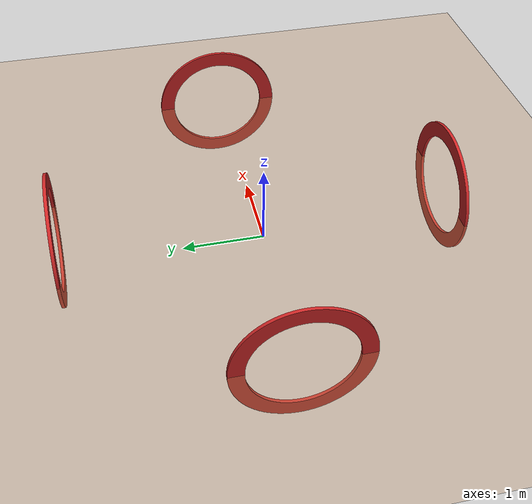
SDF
<sdf version="1.6">
 <world name="default">
  <light name="point_light" type="directional">
   <pose>0 0 15 0 -0 0</pose>
   <cast_shadows>0</cast_shadows>
   <diffuse>1 1 1 1</diffuse>
   <specular>0.1 0.1 0.1 1</specular>
   <direction>0 0 -1</direction>
  </light>
  <model name="ground_plane">
   <static>1</static>
   <link name="link">
    <collision name="collision">
     <geometry><plane><normal>0 0 1</normal><size>100 100</size></plane></geometry>
     <surface><friction><ode><mu>100</mu><mu2>50</mu2></ode></friction></surface>
    </collision>
    <visual name="visual">
     <cast_shadows>0</cast_shadows>
     <geometry><plane><normal>0 0 1</normal><size>22 22</size></plane></geometry>
     <material><script><uri>model://textures/texture.material</uri><name>Floor_Wood</name></script></material>
    </visual>
   </link>
  </model>
  <physics name="default_physics" default="0" type="ode">
   <ode>
    <solver>
     <type>quick</type>
     <iters>150</iters>
     <sor>1.3</sor>
     <use_dynamic_moi_rescaling>0</use_dynamic_moi_rescaling>
    </solver>
    <constraints>
     <cfm>1e-05</cfm>
     <erp>0.2</erp>
     <contact_max_correcting_vel>1000</contact_max_correcting_vel>
     <contact_surface_layer>0.01</contact_surface_layer>
    </constraints>
   </ode>
   <max_step_size>0.004</max_step_size>
   <real_time_factor>1000</real_time_factor>
   <real_time_update_rate>250</real_time_update_rate>
  </physics>
  <gravity>0 0 -9.8066</gravity>
  <magnetic_field>6e-06 2.3e-05 -4.2e-05</magnetic_field>
  <atmosphere type="adiabatic"/>
  <scene><ambient>0.4 0.4 0.4 1</ambient><background>0.7 0.7 0.7 1</background><shadows>1</shadows></scene>
  <spherical_coordinates>
   <surface_model>EARTH_WGS84</surface_model>
   <latitude_deg>0</latitude_deg>
   <longitude_deg>0</longitude_deg>
   <elevation>0</elevation>
   <heading_deg>0</heading_deg>
  </spherical_coordinates>
  <gravity>0 0 -9.8066</gravity>
  <magnetic_field>6e-06 2.3e-05 -4.2e-05</magnetic_field>
  <model name="circle_gate">
   <static>1</static>
   <link name="link">
    <inertial>
     <mass>10</mass>
     <inertia><ixx>10</ixx><ixy>0</ixy><ixz>0</ixz><iyy>10</iyy><iyz>0</iyz><izz>10</izz></inertia>
    </inertial>
    <collision name="collision">
     <geometry><mesh><uri>model://circle_gate/meshes/circle_gate.stl</uri></mesh></geometry>
    </collision>
    <visual name="visual">
     <geometry><mesh><uri>model://circle_gate/meshes/circle_gate.stl</uri></mesh></geometry>
     <material>
      <script><uri>file://media/materials/scripts/gazebo.material</uri><name>Gazebo/Red</name></script>
     </material>
    </visual>
   </link>
   <pose>-2 0 0 0 -0 0</pose>
  </model>
  <model name="circle_gate_0">
   <static>1</static>
   <link name="link">
    <inertial>
     <mass>10</mass>
     <inertia><ixx>10</ixx><ixy>0</ixy><ixz>0</ixz><iyy>10</iyy><iyz>0</iyz><izz>10</izz></inertia>
    </inertial>
    <collision name="collision">
     <geometry><mesh><uri>model://circle_gate/meshes/circle_gate.stl</uri></mesh></geometry>
    </collision>
    <visual name="visual">
     <geometry><mesh><uri>model://circle_gate/meshes/circle_gate.stl</uri></mesh></geometry>
     <material>
      <script><uri>file://media/materials/scripts/gazebo.material</uri><name>Gazebo/Red</name></script>
     </material>
    </visual>
   </link>
   <pose>0.5 -2.5 0 0 -0 1.57</pose>
  </model>
  <model name="circle_gate_1">
   <static>1</static>
   <link name="link">
    <inertial>
     <mass>10</mass>
     <inertia><ixx>10</ixx><ixy>0</ixy><ixz>0</ixz><iyy>10</iyy><iyz>0</iyz><izz>10</izz></inertia>
    </inertial>
    <collision name="collision">
     <geometry><mesh><uri>model://circle_gate/meshes/circle_gate.stl</uri></mesh></geometry>
    </collision>
    <visual name="visual">
     <geometry><mesh><uri>model://circle_gate/meshes/circle_gate.stl</uri></mesh></geometry>
     <material>
      <script><uri>file://media/materials/scripts/gazebo.material</uri><name>Gazebo/Red</name></script>
     </material>
    </visual>
   </link>
   <pose>3 0 0 0 -0 0</pose>
  </model>
  <model name="circle_gate_2">
   <static>1</static>
   <link name="link">
    <inertial>
     <mass>10</mass>
     <inertia><ixx>10</ixx><ixy>0</ixy><ixz>0</ixz><iyy>10</iyy><iyz>0</iyz><izz>10</izz></inertia>
    </inertial>
    <collision name="collision">
     <geometry><mesh><uri>model://circle_gate/meshes/circle_gate.stl</uri></mesh></geometry>
    </collision>
    <visual name="visual">
     <geometry><mesh><uri>model://circle_gate/meshes/circle_gate.stl</uri></mesh></geometry>
     <material>
      <script><uri>file://media/materials/scripts/gazebo.material</uri><name>Gazebo/Red</name></script>
     </material>
    </visual>
   </link>
   <pose>0.5 2.5 0 0 -0 1.57</pose>
  </model>
 </world>
</sdf>
